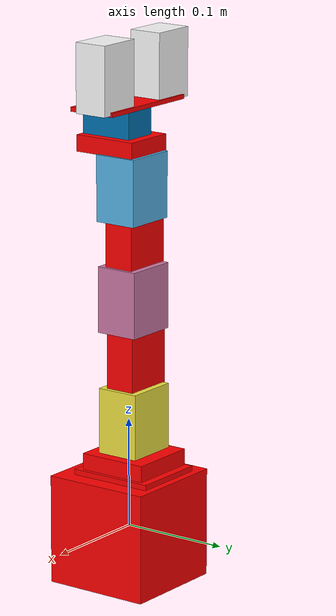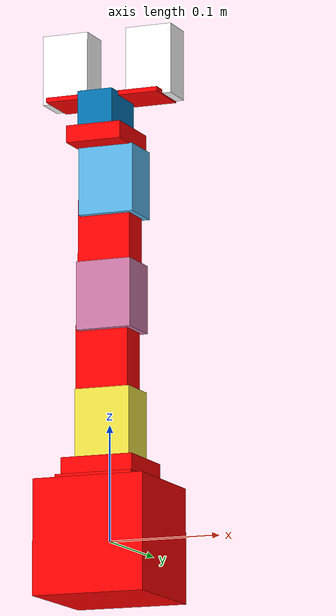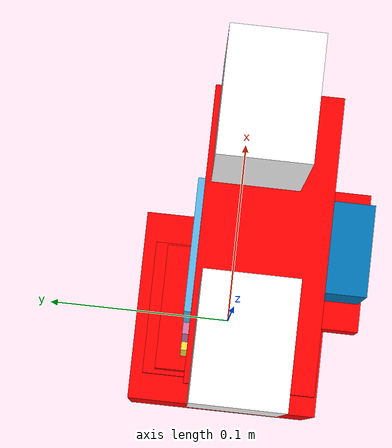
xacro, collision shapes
<?xml version="1.0"?>

<robot name="armando" xmlns:xacro="http://www.ros.org/wiki/xacro">
  <xacro:include filename="$(find armando_description)/urdf/armando_hardware_interface.xacro"/>

  <material name="red">
    <color rgba="1 0 0 1"/>
  </material>

  <link name="base_link">
    <visual>
      <geometry>
        <mesh filename="package://armando_description/meshes/base_link.stl" scale="0.001 0.001 0.001"/>
      </geometry>
      <origin rpy="0 0 0" xyz="0 0 0"/>
      <material name="red"/>
    </visual>
    <collision>
      <geometry>
        <box size="0.1 0.1 0.1"/>
      </geometry>
      <origin rpy="0 0 0" xyz="0 0 0"/>
    </collision>
    <inertial>
      <mass value="0.1"/>
      <inertia ixx="1.06682889e+08" ixy="0.0" ixz="0.0" iyy="9.92165844e+07" iyz="0.0" izz="1.26939175e+08"/>
    </inertial>
  </link>

  <joint name="base_1_2" type="fixed">
    <parent link="base_link"/>
    <child link="base_turn"/>
    <origin xyz="-0.0011 -0.011 0.05"/>
  </joint>

  <link name="base_turn">
    <visual>
      <geometry>
        <mesh filename="package://armando_description/meshes/base_turn.stl" scale="0.001 0.001 0.001"/>
      </geometry>
      <origin rpy="0 0 0" xyz="0 0 0"/>
      <material name="red"/>
    </visual>
    <collision>
      <geometry>
          <box size="0.07 0.079 0.01"/>
        </geometry>
      <origin rpy="0 0 0" xyz="0 0.015 0"/>
    </collision>
    <inertial>
      <mass value="0.1"/>
      <inertia ixx="1.35223008e+07" ixy="0.0" ixz="0.0" iyy="8.13814925e+06" iyz="0.0" izz="2.14903814e+07"/>
    </inertial>
  </link>

  <joint name="j0" type="revolute">
    <parent link="base_turn"/>
    <child link="base_turn_rot"/>
    <origin xyz="-0.0 0.0155 0.013" rpy = "0 0 -1.57"/>
    <axis xyz="0 0 1" />
    <limit effort="300" velocity="0.1" lower="-2.57" upper="2.57"/>
  </joint>

  <link name="base_turn_rot">
    <visual>
      <geometry>
        <mesh filename="package://armando_description/meshes/base_turn_table_rot.stl" scale="0.001 0.001 0.001"/>
      </geometry>
      <material name="red"/>
    </visual>
    <collision>
      <geometry>
         <box size="0.065 0.065 0.015"/>
        </geometry>
      <origin rpy="0 0 0" xyz="0 0 0"/>
    </collision>

    <inertial>
      <mass value="0.1"/>
      <inertia ixx="0.001" ixy="0.0" ixz="0.0" iyy="0.001" iyz="0.0" izz="0.001"/>
    </inertial>
  </link>

  <joint name="base_turn_rot_dyn2" type="fixed">
    <parent link="base_turn_rot"/>
    <child link="dyn2"/>
    <origin xyz="0 0 0.0385" rpy="0 1.57 1.57 "/>
  </joint>

  <link name="dyn2">
    <visual>
      <geometry>
        <mesh filename="package://armando_description/meshes/dyn.stl" scale="0.01 0.01 0.01"/>
      </geometry>

      <origin rpy="0 0 0" xyz="0 0 0"/>
    </visual>
    <collision>
      <geometry>
          <box size="0.06 0.04 0.05"/>
        </geometry>
      <origin rpy="0 0 0" xyz="0 0 0"/>
    </collision>
     <inertial>
      <mass value="0.1"/>
      <inertia ixx="6.90013881e-05" ixy="0.0" ixz="0.0" iyy="1.24554875e-04" iyz="0.0" izz="1.04295793e-04"/>
    </inertial>
  </link>

  <joint name="j1" type="revolute">
    <parent link="dyn2"/>
    <child link="dyn2_r"/>
    <origin xyz="0 0 0.0" rpy="0 0 0"/>
    <axis xyz="0 0 1" />
    <limit effort="300" velocity="0.1" lower="-3.14" upper="3.14"/>
  </joint>

  <link name="dyn2_r">

  </link>

  <joint name="dyn2_f4" type="fixed">
    <parent link="dyn2_r"/>
    <child link="f4"/>
    <origin xyz="-0.047 0.0 -0.003" rpy="0 1.57 1.57"/>
  </joint>

  <link name="f4">
    <visual>
      <geometry>
        <mesh filename="package://armando_description/meshes/f4_n_f3.stl" scale="0.001 0.001 0.001"/>
      </geometry>
      <origin rpy="0 0 0" xyz="0 0 0"/>
      <material name="red"/>
    </visual>
    <collision>
      <geometry>
          <box size="0.048 0.060 0.028"/>
        </geometry>
      <origin rpy="0 0 0" xyz="0 0.01 0"/>
    </collision>
     <inertial>
      <mass value="0.1"/>
      <inertia ixx="6.90013881e-05" ixy="0.0" ixz="0.0" iyy="1.24554875e-04" iyz="0.0" izz="1.04295793e-04"/>
    </inertial>
  </link>

  <joint name="d4_dyn3" type="fixed">
    <parent link="f4"/>
    <child link="dyn3"/>
    <origin xyz="-0.004 0.0645 0 " rpy="-1.57 3.14 1.57"/>
  </joint>

  <link name="dyn3">
    <visual>
      <geometry>
        <mesh filename="package://armando_description/meshes/dyn.stl" scale="0.01 0.01 0.01"/>
      </geometry>
      <origin rpy="0 0 0" xyz="0 0 0"/>
    </visual>
    <collision>
      <geometry>
          <box size="0.06 0.04 0.05"/>
        </geometry>
      <origin rpy="0 0 0" xyz="0 0 0"/>
    </collision>
     <inertial>
      <mass value="0.1"/>
      <inertia ixx="6.90013881e-05" ixy="0.0" ixz="0.0" iyy="1.24554875e-04" iyz="0.0" izz="1.04295793e-04"/>
    </inertial>
  </link>

  <joint name="j2" type="revolute">
    <parent link="dyn3"/>
    <child link="dyn3_r"/>
    <origin xyz="0 0 0.0" rpy="0 0 0"/>
    <axis xyz="0 0 1" />
    <limit effort="300" velocity="0.1" lower="-3.14" upper="3.14"/>
  </joint>

 <link name="dyn3_r">

  </link>

  <joint name="dyn3_f5" type="fixed">
    <parent link="dyn3_r"/>
    <child link="f5"/>
    <origin xyz="-0.046 -0.0 -0.002" rpy="1.57 1.57 3.1415 "/>
  </joint>

  <link name="f5">
    <visual>
      <geometry>
        <mesh filename="package://armando_description/meshes/f4_n_f3.stl" scale="0.001 0.001 0.001"/>
      </geometry>
      <origin rpy="0 0 0" xyz="0 0 0"/>
      <material name="red"/>
    </visual>
    <collision>
      <geometry>
          <box size="0.048 0.060 0.028"/>
        </geometry>
      <origin rpy="0 0 0" xyz="0 0.01 0"/>
    </collision>

    <inertial>
      <mass value="0.1"/>
  <inertia ixx="0.001" ixy="0.0" ixz="0.0" iyy="0.001" iyz="0.0" izz="0.001"/>    </inertial>
  </link>

  <joint name="f5_dyn4" type="fixed">
    <parent link="f5"/>
    <child link="dyn4"/>
    <origin xyz="-0.004 0.065 -0.0" rpy="-1.57 3.1415 1.57 "/>
  </joint>

  <link name="dyn4">
    <visual>
      <geometry>
        <mesh filename="package://armando_description/meshes/dyn.stl" scale="0.01 0.01 0.01"/>
      </geometry>

      <origin rpy="0 0 0" xyz="0 0 0"/>
    </visual>
   <collision>
      <geometry>
          <box size="0.06 0.04 0.05"/>
        </geometry>
      <origin rpy="0 0 0" xyz="0.01 0 0"/>
    </collision>

    <inertial>
      <mass value="0.1"/>
      <inertia ixx="6.90013881e-05" ixy="0.0" ixz="0.0" iyy="1.24554875e-04" iyz="0.0" izz="1.04295793e-04"/>
    </inertial>
  </link>

  <joint name="j3" type="revolute">
    <parent link="dyn4"/>
    <child link="dyn4_r"/>
    <origin xyz="0 0 0.0" rpy="0 0 0"/>
    <axis xyz="0 0 1" />
    <limit effort="300" velocity="0.1" lower="-3.14" upper="3.14"/>
  </joint>

  <link name="dyn4_r">

  </link>

  <joint name="f5_wrist" type="fixed">
    <parent link="dyn4_r"/>
    <child link="wrist"/>
    <origin xyz="-0.017 -0.013 0.003" rpy="1.57 1.57 -1.57"/>
  </joint>

  <link name="wrist">
    <visual>
      <geometry>
        <mesh filename="package://armando_description/meshes/wrist.stl" scale="0.001 0.001 0.001"/>
      </geometry>
      <origin rpy="0 0 0" xyz="0 0 0"/>
      <material name="red"/>
    </visual>
    <collision>
      <geometry>
        <box size="0.05 0.06 0.015"/>
      </geometry>
      <origin rpy="0 0 0" xyz="+0.005 0 0.01"/>
    </collision>

     <inertial>
      <mass value="0.1"/>
      <inertia ixx="6.90013881e-05" ixy="0.0" ixz="0.0" iyy="1.24554875e-04" iyz="0.0" izz="1.04295793e-04"/>
    </inertial>
  </link>

  <joint name="wrist_dyn5" type="fixed">
    <parent link="wrist"/>
    <child link="dyn5"/>
    <origin xyz="0.0038 -0.013 0.0275" rpy="0 0 1.57"/>
  </joint>

    <link name="dyn5">
    <visual>
      <geometry>
        <mesh filename="package://armando_description/meshes/dyn.stl" scale="0.01 0.01 0.01"/>
      </geometry>
      <origin rpy="0 0 0" xyz="0 0 0"/>
    </visual>
    <collision>
      <geometry>
          <box size="0.05 0.032 0.04"/>
        </geometry>
      <origin rpy="0 0 0" xyz="0.017 0 0"/>
    </collision>

    <inertial>
      <mass value="0.1"/>
      <inertia ixx="6.90013881e-05" ixy="0.0" ixz="0.0" iyy="1.24554875e-04" iyz="0.0" izz="1.04295793e-04"/>
    </inertial>
  </link>

  <joint name="dyn5_dyn5_r" type="fixed">
    <parent link="dyn5"/>
    <child link="dyn5_r"/>
    <origin xyz="0 0 0.0" rpy="0 0 0"/>
    <axis xyz="0 0 1" />
    <limit effort="300" velocity="0.1" lower="-3.14" upper="3.14"/>
  </joint>

  <link name="dyn5_r">

  </link>

  <joint name="wrist_rotate_dyn5" type="fixed">
    <parent link="dyn5_r"/>
    <child link="crawer_base"/>
    <origin xyz="0.015 0 0.019" rpy="0 0 1.57"/>
  </joint>

  <link name="crawer_base">
    <visual>
      <geometry>
        <mesh filename="package://armando_description/meshes/the_crawer_base.stl" scale="0.001 0.001 0.001"/>
      </geometry>
      <origin rpy="0 0 0" xyz="0 0 0"/>
      <material name="red"/>
    </visual>
    <collision>
      <geometry>
          <box size="0.104 0.045 0.004"/>
        </geometry>
      <origin rpy="0 0 0" xyz="0 0.01 0"/>
    </collision>

    <inertial>
      <mass value="0.1"/>
      <inertia ixx="6.90013881e-05" ixy="0.0" ixz="0.0" iyy="1.24554875e-04" iyz="0.0" izz="1.04295793e-04"/>
    </inertial>
  </link>

  <joint name="crawer_base_crawer_left" type="fixed">
    <parent link="crawer_base"/>
    <child link="crawer_left"/>
    <origin xyz="-0.03 0.015 0.01" rpy="0 -1.57 0"/>
  </joint>

  <link name="crawer_left">
    <visual>
      <geometry>
        <mesh filename="package://armando_description/meshes/the_crawer.stl" scale="0.001 0.001 0.001"/>
      </geometry>
      <origin rpy="0 0 0" xyz="0 0 0"/>
      <material name="white">
        <color rgba="1 1 1 1"/>
      </material>
    </visual>
    <collision>
      <geometry>
           <box size="0.062 0.031 0.042"/>
        </geometry>
      <origin rpy="0 0 0" xyz="0.02 0 0.009"/>
    </collision>

    <inertial>
      <mass value="0.1"/>
      <inertia ixx="6.90013881e-05" ixy="0.0" ixz="0.0" iyy="1.24554875e-04" iyz="0.0" izz="1.04295793e-04"/>
    </inertial>
  </link>

  <joint name="crawer_base_crawer_right" type="fixed">
    <parent link="crawer_base"/>
    <child link="crawer_right"/>
    <origin xyz="0.03 0.015 0.01" rpy="3.1415 -1.57 0"/>
  </joint>

  <link name="crawer_right">
    <visual>
      <geometry>
        <mesh filename="package://armando_description/meshes/the_crawer.stl" scale="0.001 0.001 0.001"/>
      </geometry>
      <origin rpy="0 0 0" xyz="0 0 0"/>
      <material name="white">
        <color rgba="1 1 1 1"/>
      </material>
    </visual>
    <collision>
      <geometry>
           <box size="0.062 0.031 0.042"/>
        </geometry>
      <origin rpy="0 0 0" xyz="0.02 0 0.009"/>
    </collision>

    <inertial>
      <mass value="0.1"/>
      <inertia ixx="6.90013881e-05" ixy="0.0" ixz="0.0" iyy="1.24554875e-04" iyz="0.0" izz="1.04295793e-04"/>
    </inertial>
  </link>

  <gazebo>
    <plugin filename="ign_ros2_control-system" name="ign_ros2_control::IgnitionROS2ControlPlugin">
    <parameters>$(find armando_description)/config/armando_controllers.yaml</parameters>
      <controller_manager_prefix_node_name>controller_manager</controller_manager_prefix_node_name>
    </plugin>
  </gazebo>

  <xacro:include filename="$(find armando_description)/urdf/armando_hardware_interface.xacro"/>

  <ros2_control name="HardwareInterface_Ignition" type="system">

    <hardware>
      <plugin>ign_ros2_control/IgnitionSystem</plugin>
    </hardware>

    <xacro:joint_ros2_control name="j0" initial_pos="0.0"/>
    <xacro:joint_ros2_control name="j1" initial_pos="0.0"/>
    <xacro:joint_ros2_control name="j2" initial_pos="0.0"/>
    <xacro:joint_ros2_control name="j3" initial_pos="0.0"/>

  </ros2_control>

  <gazebo>
	  <plugin filename="gz-sim-sensors-system"
		name="gz::sim::systems::Sensors">
		<render_engine>ogre2</render_engine>
	</plugin>
  </gazebo>

  <gazebo reference="camera_link">
  <sensor name="camera" type="camera">
    <camera>
      <horizontal_fov>1.047</horizontal_fov>
      <image>
        <width>320</width>
        <height>240</height>
      </image>
      <clip>
        <near>0.1</near>
        <far>100</far>
      </clip>
    </camera>
    <always_on>1</always_on>
    <update_rate>30</update_rate>
    <visualize>true</visualize>
    <topic>camera</topic>
  </sensor>
 </gazebo>

</robot>
